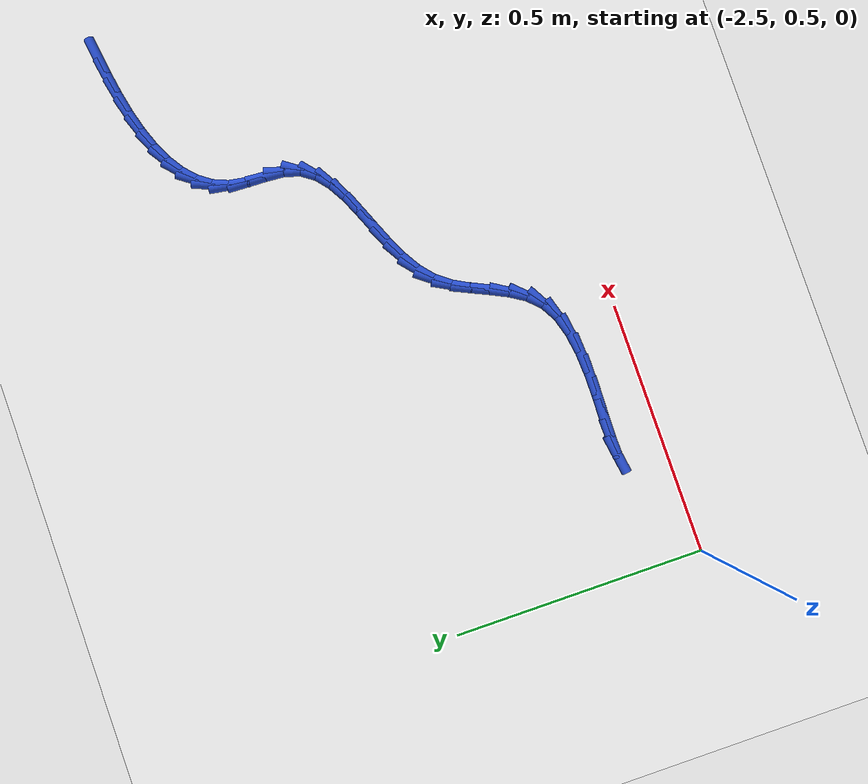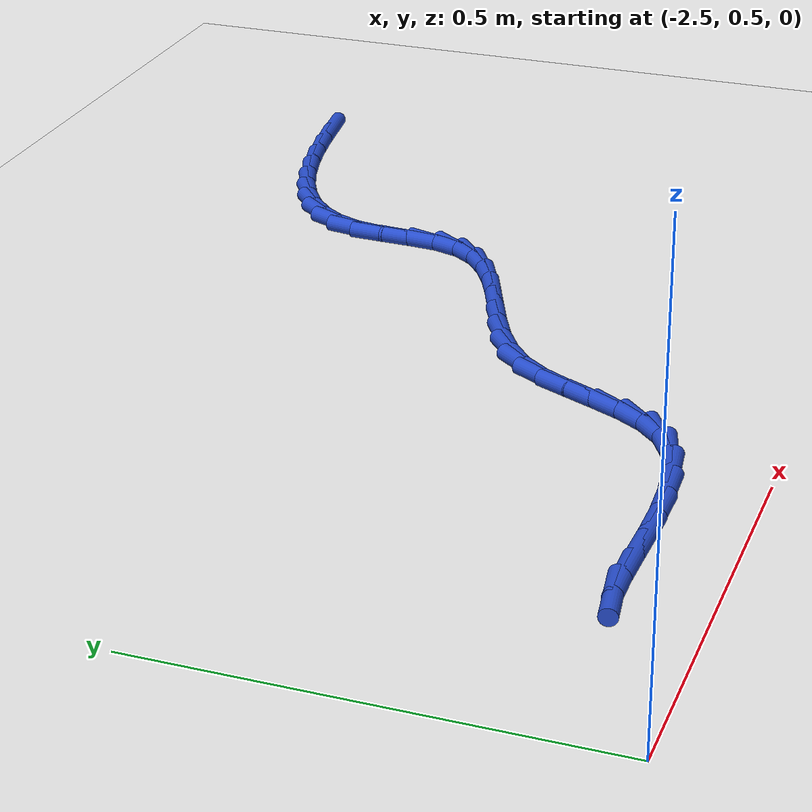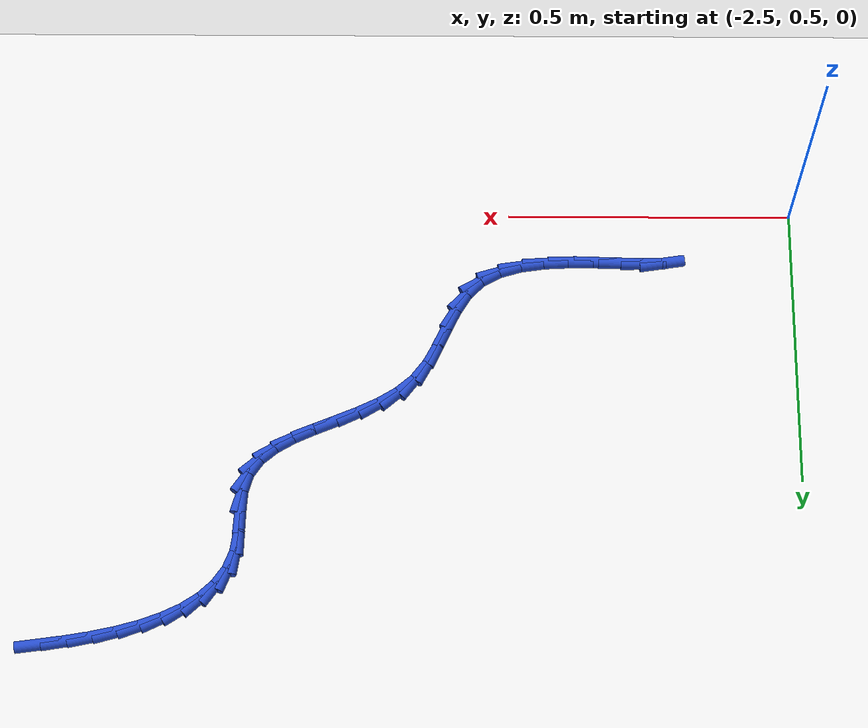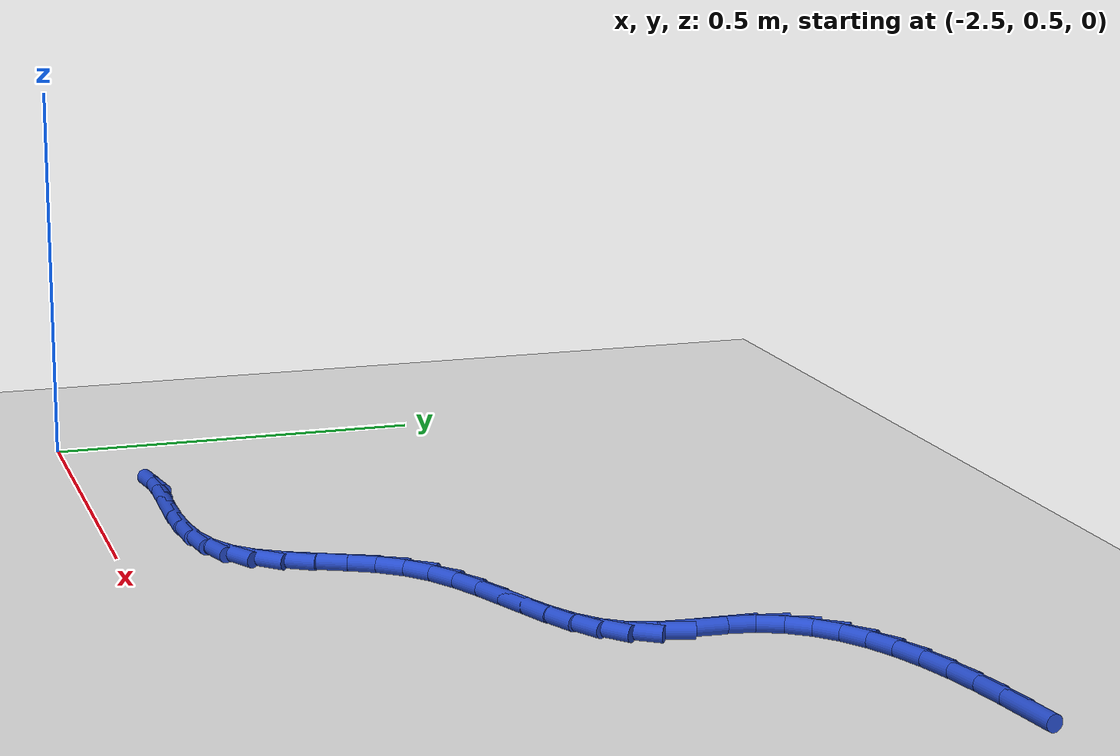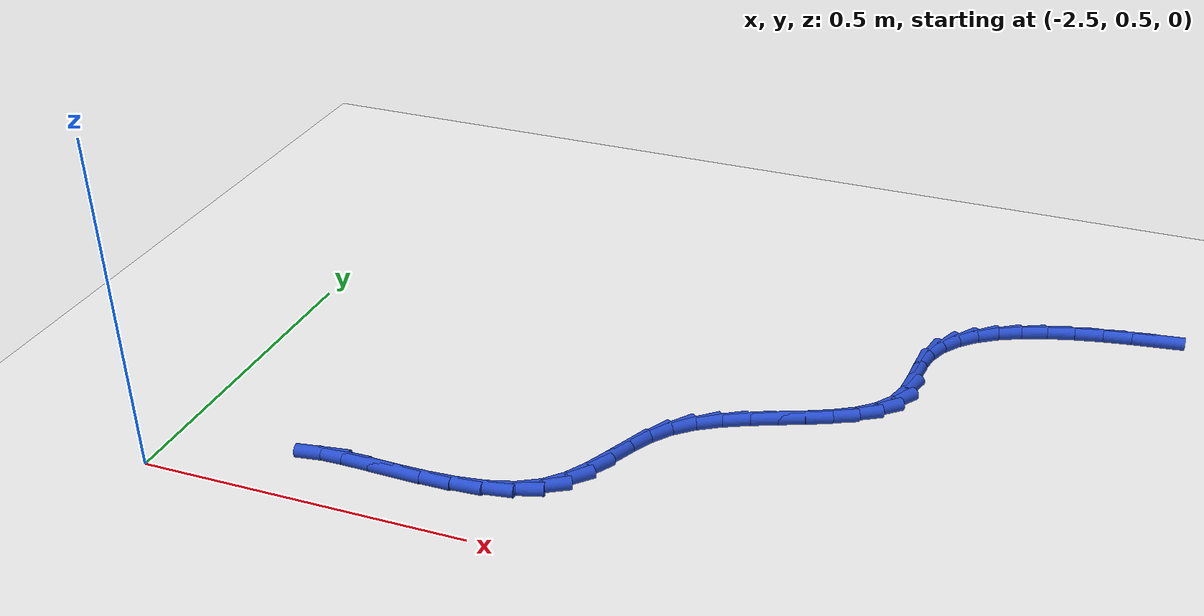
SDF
<sdf version="1.6">
 <world name="default">
  <model name="ground_plane">
   <static>1</static>
   <link name="link">
    <collision name="collision">
     <geometry><plane><normal>0 0 1</normal><size>100 100</size></plane></geometry>
     <surface><friction><ode><mu>100</mu><mu2>50</mu2></ode></friction></surface>
    </collision>
    <visual name="visual">
     <cast_shadows>0</cast_shadows>
     <geometry><plane><normal>0 0 1</normal><size>100 100</size></plane></geometry>
     <material>
      <script><uri>file://media/materials/scripts/gazebo.material</uri><name>Gazebo/WhiteGlow</name></script>
     </material>
    </visual>
   </link>
  </model>
  <model name="line">
   <link name="link_54">
    <pose>-1.2058921739502846 1.2980631952033461 0.01 0 1.57 0.1359325334782057</pose>
    <collision name="collision">
     <geometry><cylinder><radius>0.01</radius><length>0.08</length></cylinder></geometry>
    </collision>
    <visual name="visual">
     <material>
      <script><name>Gazebo/Blue</name><uri>file://media/materials/scripts/gazebo.material</uri></script>
     </material>
     <geometry><cylinder><radius>0.01</radius><length>0.08</length></cylinder></geometry>
    </visual>
   </link>
   <link name="link_55">
    <pose>-1.2494551970570986 1.2921048188814008 0.01 0 1.57 0.16930082686875172</pose>
    <collision name="collision">
     <geometry><cylinder><radius>0.01</radius><length>0.08</length></cylinder></geometry>
    </collision>
    <visual name="visual">
     <material>
      <script><name>Gazebo/Blue</name><uri>file://media/materials/scripts/gazebo.material</uri></script>
     </material>
     <geometry><cylinder><radius>0.01</radius><length>0.08</length></cylinder></geometry>
    </visual>
   </link>
   <link name="link_56">
    <pose>-1.2925029361387688 1.2847463617627204 0.01 0 1.57 0.21428412550458614</pose>
    <collision name="collision">
     <geometry><cylinder><radius>0.01</radius><length>0.08</length></cylinder></geometry>
    </collision>
    <visual name="visual">
     <material>
      <script><name>Gazebo/Blue</name><uri>file://media/materials/scripts/gazebo.material</uri></script>
     </material>
     <geometry><cylinder><radius>0.01</radius><length>0.08</length></cylinder></geometry>
    </visual>
   </link>
   <link name="link_57">
    <pose>-1.3343034515466234 1.2756495113338853 0.01 0 1.57 0.27355765989172215</pose>
    <collision name="collision">
     <geometry><cylinder><radius>0.01</radius><length>0.08</length></cylinder></geometry>
    </collision>
    <visual name="visual">
     <material>
      <script><name>Gazebo/Blue</name><uri>file://media/materials/scripts/gazebo.material</uri></script>
     </material>
     <geometry><cylinder><radius>0.01</radius><length>0.08</length></cylinder></geometry>
    </visual>
   </link>
   <link name="link_58">
    <pose>-1.3741248036319897 1.2644759550814748 0.01 0 1.57 0.3510048901809385</pose>
    <collision name="collision">
     <geometry><cylinder><radius>0.01</radius><length>0.08</length></cylinder></geometry>
    </collision>
    <visual name="visual">
     <material>
      <script><name>Gazebo/Blue</name><uri>file://media/materials/scripts/gazebo.material</uri></script>
     </material>
     <geometry><cylinder><radius>0.01</radius><length>0.08</length></cylinder></geometry>
    </visual>
   </link>
   <link name="link_59">
    <pose>-1.411235052746197 1.2508873804920688 0.01 0 1.57 0.4518957733326471</pose>
    <collision name="collision">
     <geometry><cylinder><radius>0.01</radius><length>0.08</length></cylinder></geometry>
    </collision>
    <visual name="visual">
     <material>
      <script><name>Gazebo/Blue</name><uri>file://media/materials/scripts/gazebo.material</uri></script>
     </material>
     <geometry><cylinder><radius>0.01</radius><length>0.08</length></cylinder></geometry>
    </visual>
   </link>
   <link name="link_60">
    <pose>-1.4449022592405725 1.2345454750522478 0.01 0 1.57 0.5826329221952813</pose>
    <collision name="collision">
     <geometry><cylinder><radius>0.01</radius><length>0.08</length></cylinder></geometry>
    </collision>
    <visual name="visual">
     <material>
      <script><name>Gazebo/Blue</name><uri>file://media/materials/scripts/gazebo.material</uri></script>
     </material>
     <geometry><cylinder><radius>0.01</radius><length>0.08</length></cylinder></geometry>
    </visual>
   </link>
   <link name="link_61">
    <pose>-1.4743944834664449 1.21511192624859 0.01 0 1.57 0.749126598527334</pose>
    <collision name="collision">
     <geometry><cylinder><radius>0.01</radius><length>0.08</length></cylinder></geometry>
    </collision>
    <visual name="visual">
     <material>
      <script><name>Gazebo/Blue</name><uri>file://media/materials/scripts/gazebo.material</uri></script>
     </material>
     <geometry><cylinder><radius>0.01</radius><length>0.08</length></cylinder></geometry>
    </visual>
   </link>
   <link name="link_62">
    <pose>-1.4989797857751417 1.192248421567677 0.01 0 1.57 0.9524453674155466</pose>
    <collision name="collision">
     <geometry><cylinder><radius>0.01</radius><length>0.08</length></cylinder></geometry>
    </collision>
    <visual name="visual">
     <material>
      <script><name>Gazebo/Blue</name><uri>file://media/materials/scripts/gazebo.material</uri></script>
     </material>
     <geometry><cylinder><radius>0.01</radius><length>0.08</length></cylinder></geometry>
    </visual>
   </link>
   <link name="link_63">
    <pose>-1.517926226517992 1.1656166484960875 0.01 0 1.57 1.1824536876001184</pose>
    <collision name="collision">
     <geometry><cylinder><radius>0.01</radius><length>0.08</length></cylinder></geometry>
    </collision>
    <visual name="visual">
     <material>
      <script><name>Gazebo/Blue</name><uri>file://media/materials/scripts/gazebo.material</uri></script>
     </material>
     <geometry><cylinder><radius>0.01</radius><length>0.08</length></cylinder></geometry>
    </visual>
   </link>
   <link name="link_64">
    <pose>-1.5305018660463232 1.134878294520402 0.01 0 1.57 1.4115282392470436</pose>
    <collision name="collision">
     <geometry><cylinder><radius>0.01</radius><length>0.08</length></cylinder></geometry>
    </collision>
    <visual name="visual">
     <material>
      <script><name>Gazebo/Blue</name><uri>file://media/materials/scripts/gazebo.material</uri></script>
     </material>
     <geometry><cylinder><radius>0.01</radius><length>0.08</length></cylinder></geometry>
    </visual>
   </link>
   <link name="link_65">
    <pose>-1.536137140864182 1.0997956524454298 0.01 0 1.57 1.5349975755690222</pose>
    <collision name="collision">
     <geometry><cylinder><radius>0.01</radius><length>0.08</length></cylinder></geometry>
    </collision>
    <visual name="visual">
     <material>
      <script><name>Gazebo/Blue</name><uri>file://media/materials/scripts/gazebo.material</uri></script>
     </material>
     <geometry><cylinder><radius>0.01</radius><length>0.08</length></cylinder></geometry>
    </visual>
   </link>
   <link name="link_66">
    <pose>-1.537486159797921 1.0621283439597295 0.01 0 1.57 1.4978181154609655</pose>
    <collision name="collision">
     <geometry><cylinder><radius>0.01</radius><length>0.08</length></cylinder></geometry>
    </collision>
    <visual name="visual">
     <material>
      <script><name>Gazebo/Blue</name><uri>file://media/materials/scripts/gazebo.material</uri></script>
     </material>
     <geometry><cylinder><radius>0.01</radius><length>0.08</length></cylinder></geometry>
    </visual>
   </link>
   <link name="link_67">
    <pose>-1.5401660464995566 1.0254718209798028 0.01 0 1.57 1.2806897122747893</pose>
    <collision name="collision">
     <geometry><cylinder><radius>0.01</radius><length>0.08</length></cylinder></geometry>
    </collision>
    <visual name="visual">
     <material>
      <script><name>Gazebo/Blue</name><uri>file://media/materials/scripts/gazebo.material</uri></script>
     </material>
     <geometry><cylinder><radius>0.01</radius><length>0.08</length></cylinder></geometry>
    </visual>
   </link>
   <link name="link_68">
    <pose>-1.5497449218140003 0.9933848928731256 0.01 0 1.57 0.9593520538185635</pose>
    <collision name="collision">
     <geometry><cylinder><radius>0.01</radius><length>0.08</length></cylinder></geometry>
    </collision>
    <visual name="visual">
     <material>
      <script><name>Gazebo/Blue</name><uri>file://media/materials/scripts/gazebo.material</uri></script>
     </material>
     <geometry><cylinder><radius>0.01</radius><length>0.08</length></cylinder></geometry>
    </visual>
   </link>
   <link name="link_69">
    <pose>-1.568200478533221 0.9670600819770664 0.01 0 1.57 0.7003588775701637</pose>
    <collision name="collision">
     <geometry><cylinder><radius>0.01</radius><length>0.08</length></cylinder></geometry>
    </collision>
    <visual name="visual">
     <material>
      <script><name>Gazebo/Blue</name><uri>file://media/materials/scripts/gazebo.material</uri></script>
     </material>
     <geometry><cylinder><radius>0.01</radius><length>0.08</length></cylinder></geometry>
    </visual>
   </link>
   <link name="link_70">
    <pose>-1.5939582226620952 0.945348826669394 0.01 0 1.57 0.5296910763371319</pose>
    <collision name="collision">
     <geometry><cylinder><radius>0.01</radius><length>0.08</length></cylinder></geometry>
    </collision>
    <visual name="visual">
     <material>
      <script><name>Gazebo/Blue</name><uri>file://media/materials/scripts/gazebo.material</uri></script>
     </material>
     <geometry><cylinder><radius>0.01</radius><length>0.08</length></cylinder></geometry>
    </visual>
   </link>
   <link name="link_71">
    <pose>-1.6252921774745424 0.9270027299833863 0.01 0 1.57 0.4321846612886541</pose>
    <collision name="collision">
     <geometry><cylinder><radius>0.01</radius><length>0.08</length></cylinder></geometry>
    </collision>
    <visual name="visual">
     <material>
      <script><name>Gazebo/Blue</name><uri>file://media/materials/scripts/gazebo.material</uri></script>
     </material>
     <geometry><cylinder><radius>0.01</radius><length>0.08</length></cylinder></geometry>
    </visual>
   </link>
   <link name="link_72">
    <pose>-1.6604763662444846 0.9107733949523193 0.01 0 1.57 0.3905765407524842</pose>
    <collision name="collision">
     <geometry><cylinder><radius>0.01</radius><length>0.08</length></cylinder></geometry>
    </collision>
    <visual name="visual">
     <material>
      <script><name>Gazebo/Blue</name><uri>file://media/materials/scripts/gazebo.material</uri></script>
     </material>
     <geometry><cylinder><radius>0.01</radius><length>0.08</length></cylinder></geometry>
    </visual>
   </link>
   <link name="link_73">
    <pose>-1.697784812245843 0.8954124246094712 0.01 0 1.57 0.3954658344884448</pose>
    <collision name="collision">
     <geometry><cylinder><radius>0.01</radius><length>0.08</length></cylinder></geometry>
    </collision>
    <visual name="visual">
     <material>
      <script><name>Gazebo/Blue</name><uri>file://media/materials/scripts/gazebo.material</uri></script>
     </material>
     <geometry><cylinder><radius>0.01</radius><length>0.08</length></cylinder></geometry>
    </visual>
   </link>
   <link name="link_74">
    <pose>-1.735491538752539 0.8796714219881183 0.01 0 1.57 0.4454513241370309</pose>
    <collision name="collision">
     <geometry><cylinder><radius>0.01</radius><length>0.08</length></cylinder></geometry>
    </collision>
    <visual name="visual">
     <material>
      <script><name>Gazebo/Blue</name><uri>file://media/materials/scripts/gazebo.material</uri></script>
     </material>
     <geometry><cylinder><radius>0.01</radius><length>0.08</length></cylinder></geometry>
    </visual>
   </link>
   <link name="link_75">
    <pose>-1.7718705690384933 0.8623019901215384 0.01 0 1.57 0.5459401500034594</pose>
    <collision name="collision">
     <geometry><cylinder><radius>0.01</radius><length>0.08</length></cylinder></geometry>
    </collision>
    <visual name="visual">
     <material>
      <script><name>Gazebo/Blue</name><uri>file://media/materials/scripts/gazebo.material</uri></script>
     </material>
     <geometry><cylinder><radius>0.01</radius><length>0.08</length></cylinder></geometry>
    </visual>
   </link>
   <link name="link_76">
    <pose>-1.8051959263776278 0.8420557320430078 0.01 0 1.57 0.7066789275192622</pose>
    <collision name="collision">
     <geometry><cylinder><radius>0.01</radius><length>0.08</length></cylinder></geometry>
    </collision>
    <visual name="visual">
     <material>
      <script><name>Gazebo/Blue</name><uri>file://media/materials/scripts/gazebo.material</uri></script>
     </material>
     <geometry><cylinder><radius>0.01</radius><length>0.08</length></cylinder></geometry>
    </visual>
   </link>
   <link name="link_77">
    <pose>-1.8337416340438628 0.8176842507858042 0.01 0 1.57 0.9178741652167748</pose>
    <collision name="collision">
     <geometry><cylinder><radius>0.01</radius><length>0.08</length></cylinder></geometry>
    </collision>
    <visual name="visual">
     <material>
      <script><name>Gazebo/Blue</name><uri>file://media/materials/scripts/gazebo.material</uri></script>
     </material>
     <geometry><cylinder><radius>0.01</radius><length>0.08</length></cylinder></geometry>
    </visual>
   </link>
   <link name="link_78">
    <pose>-1.856217850724717 0.788296875375023 0.01 0 1.57 1.075277838301752</pose>
    <collision name="collision">
     <geometry><cylinder><radius>0.01</radius><length>0.08</length></cylinder></geometry>
    </collision>
    <visual name="visual">
     <material>
      <script><name>Gazebo/Blue</name><uri>file://media/materials/scripts/gazebo.material</uri></script>
     </material>
     <geometry><cylinder><radius>0.01</radius><length>0.08</length></cylinder></geometry>
    </visual>
   </link>
   <link name="link_79">
    <pose>-1.874077988239123 0.7552529996474057 0.01 0 1.57 1.1419102738747062</pose>
    <collision name="collision">
     <geometry><cylinder><radius>0.01</radius><length>0.08</length></cylinder></geometry>
    </collision>
    <visual name="visual">
     <material>
      <script><name>Gazebo/Blue</name><uri>file://media/materials/scripts/gazebo.material</uri></script>
     </material>
     <geometry><cylinder><radius>0.01</radius><length>0.08</length></cylinder></geometry>
    </visual>
   </link>
   <link name="link_80">
    <pose>-1.8898394259106097 0.720784702433799 0.01 0 1.57 1.1226421933375095</pose>
    <collision name="collision">
     <geometry><cylinder><radius>0.01</radius><length>0.08</length></cylinder></geometry>
    </collision>
    <visual name="visual">
     <material>
      <script><name>Gazebo/Blue</name><uri>file://media/materials/scripts/gazebo.material</uri></script>
     </material>
     <geometry><cylinder><radius>0.01</radius><length>0.08</length></cylinder></geometry>
    </visual>
   </link>
   <link name="link_81">
    <pose>-1.906021882741221 0.687125981610814 0.01 0 1.57 1.0124618073572245</pose>
    <collision name="collision">
     <geometry><cylinder><radius>0.01</radius><length>0.08</length></cylinder></geometry>
    </collision>
    <visual name="visual">
     <material>
      <script><name>Gazebo/Blue</name><uri>file://media/materials/scripts/gazebo.material</uri></script>
     </material>
     <geometry><cylinder><radius>0.01</radius><length>0.08</length></cylinder></geometry>
    </visual>
   </link>
   <link name="link_82">
    <pose>-1.9251450777329993 0.6565108350550599 0.01 0 1.57 0.800499253635341</pose>
    <collision name="collision">
     <geometry><cylinder><radius>0.01</radius><length>0.08</length></cylinder></geometry>
    </collision>
    <visual name="visual">
     <material>
      <script><name>Gazebo/Blue</name><uri>file://media/materials/scripts/gazebo.material</uri></script>
     </material>
     <geometry><cylinder><radius>0.01</radius><length>0.08</length></cylinder></geometry>
    </visual>
   </link>
   <link name="link_83">
    <pose>-1.949728729887989 0.6311732606431465 0.01 0 1.57 0.5161643224501427</pose>
    <collision name="collision">
     <geometry><cylinder><radius>0.01</radius><length>0.08</length></cylinder></geometry>
    </collision>
    <visual name="visual">
     <material>
      <script><name>Gazebo/Blue</name><uri>file://media/materials/scripts/gazebo.material</uri></script>
     </material>
     <geometry><cylinder><radius>0.01</radius><length>0.08</length></cylinder></geometry>
    </visual>
   </link>
   <link name="link_84">
    <pose>-1.9818074743935952 0.6129692195299608 0.01 0 1.57 0.2908812015744674</pose>
    <collision name="collision">
     <geometry><cylinder><radius>0.01</radius><length>0.08</length></cylinder></geometry>
    </collision>
    <visual name="visual">
     <material>
      <script><name>Gazebo/Blue</name><uri>file://media/materials/scripts/gazebo.material</uri></script>
     </material>
     <geometry><cylinder><radius>0.01</radius><length>0.08</length></cylinder></geometry>
    </visual>
   </link>
   <link name="link_85">
    <pose>-2.020410561338686 0.6014125087002248 0.01 0 1.57 0.14525740501473924</pose>
    <collision name="collision">
     <geometry><cylinder><radius>0.01</radius><length>0.08</length></cylinder></geometry>
    </collision>
    <visual name="visual">
     <material>
      <script><name>Gazebo/Blue</name><uri>file://media/materials/scripts/gazebo.material</uri></script>
     </material>
     <geometry><cylinder><radius>0.01</radius><length>0.08</length></cylinder></geometry>
    </visual>
   </link>
   <link name="link_86">
    <pose>-2.0634177321958704 0.5951210872323677 0.01 0 1.57 0.053163553457251524</pose>
    <collision name="collision">
     <geometry><cylinder><radius>0.01</radius><length>0.08</length></cylinder></geometry>
    </collision>
    <visual name="visual">
     <material>
      <script><name>Gazebo/Blue</name><uri>file://media/materials/scripts/gazebo.material</uri></script>
     </material>
     <geometry><cylinder><radius>0.01</radius><length>0.08</length></cylinder></geometry>
    </visual>
   </link>
   <link name="link_87">
    <pose>-2.1087064122529457 0.5927111091499189 0.01 0 1.57 -0.0019279167633013041</pose>
    <collision name="collision">
     <geometry><cylinder><radius>0.01</radius><length>0.08</length></cylinder></geometry>
    </collision>
    <visual name="visual">
     <material>
      <script><name>Gazebo/Blue</name><uri>file://media/materials/scripts/gazebo.material</uri></script>
     </material>
     <geometry><cylinder><radius>0.01</radius><length>0.08</length></cylinder></geometry>
    </visual>
   </link>
   <link name="link_88">
    <pose>-2.1541540267977015 0.5927987284764081 0.01 0 1.57 -0.027620870644997887</pose>
    <collision name="collision">
     <geometry><cylinder><radius>0.01</radius><length>0.08</length></cylinder></geometry>
    </collision>
    <visual name="visual">
     <material>
      <script><name>Gazebo/Blue</name><uri>file://media/materials/scripts/gazebo.material</uri></script>
     </material>
     <geometry><cylinder><radius>0.01</radius><length>0.08</length></cylinder></geometry>
    </visual>
   </link>
   <link name="link_89">
    <pose>-2.1976380011179324 0.5940000992353652 0.01 0 1.57 -0.023633395372651737</pose>
    <collision name="collision">
     <geometry><cylinder><radius>0.01</radius><length>0.08</length></cylinder></geometry>
    </collision>
    <visual name="visual">
     <material>
      <script><name>Gazebo/Blue</name><uri>file://media/materials/scripts/gazebo.material</uri></script>
     </material>
     <geometry><cylinder><radius>0.01</radius><length>0.08</length></cylinder></geometry>
    </visual>
   </link>
   <link name="link_90">
    <pose>-2.237035760501432 0.5949313754503199 0.01 0 1.57 0.021770791157250998</pose>
    <collision name="collision">
     <geometry><cylinder><radius>0.01</radius><length>0.08</length></cylinder></geometry>
    </collision>
    <visual name="visual">
     <material>
      <script><name>Gazebo/Blue</name><uri>file://media/materials/scripts/gazebo.material</uri></script>
     </material>
     <geometry><cylinder><radius>0.01</radius><length>0.08</length></cylinder></geometry>
    </visual>
   </link>
   <link name="link_91">
    <pose>-2.270224730235993 0.594208711144802 0.01 0 1.57 0.15014124133255385</pose>
    <collision name="collision">
     <geometry><cylinder><radius>0.01</radius><length>0.08</length></cylinder></geometry>
    </collision>
    <visual name="visual">
     <material>
      <script><name>Gazebo/Blue</name><uri>file://media/materials/scripts/gazebo.material</uri></script>
     </material>
     <geometry><cylinder><radius>0.01</radius><length>0.08</length></cylinder></geometry>
    </visual>
   </link>
  </model>
 </world>
</sdf>
